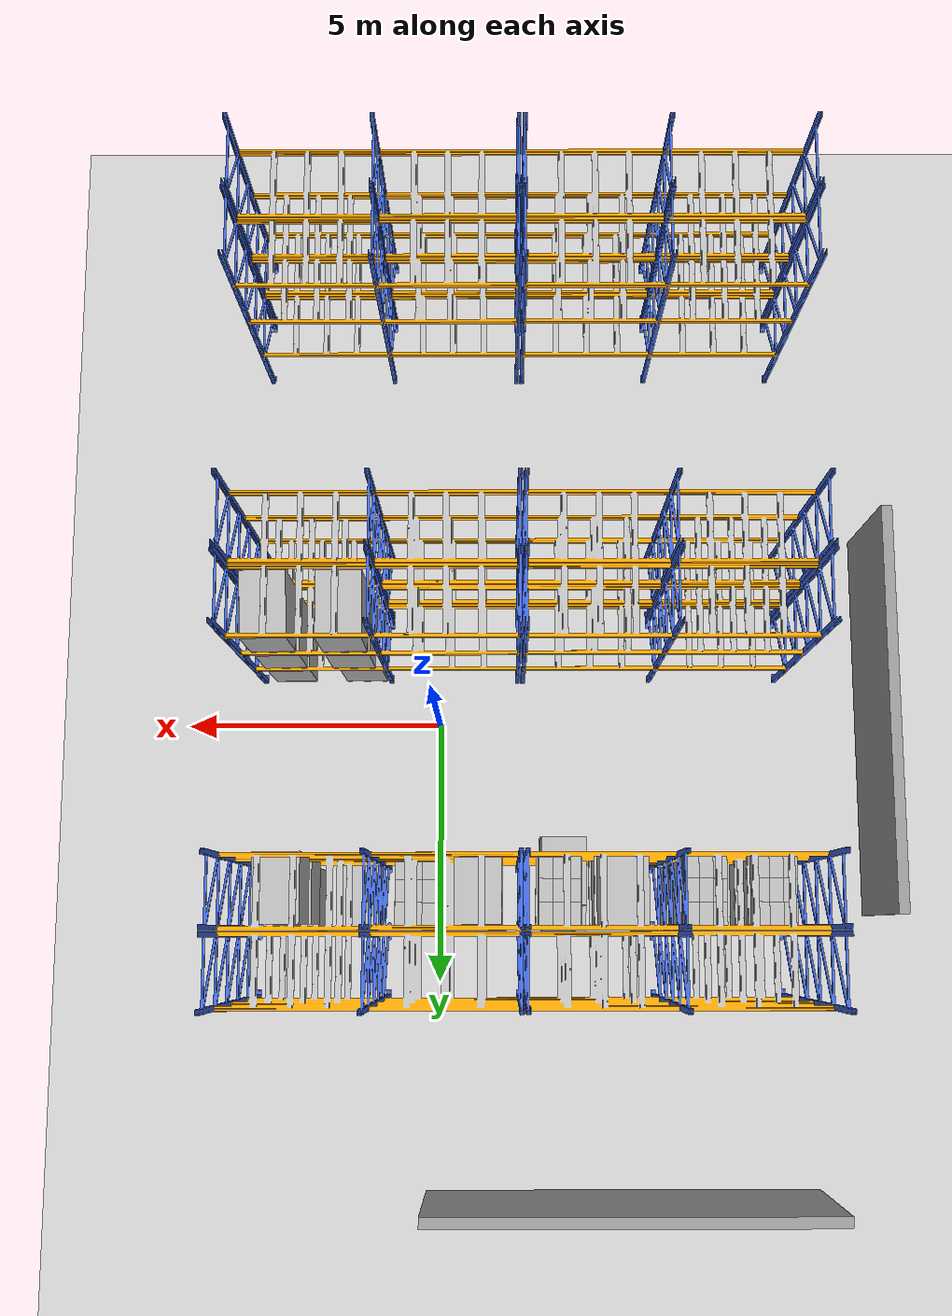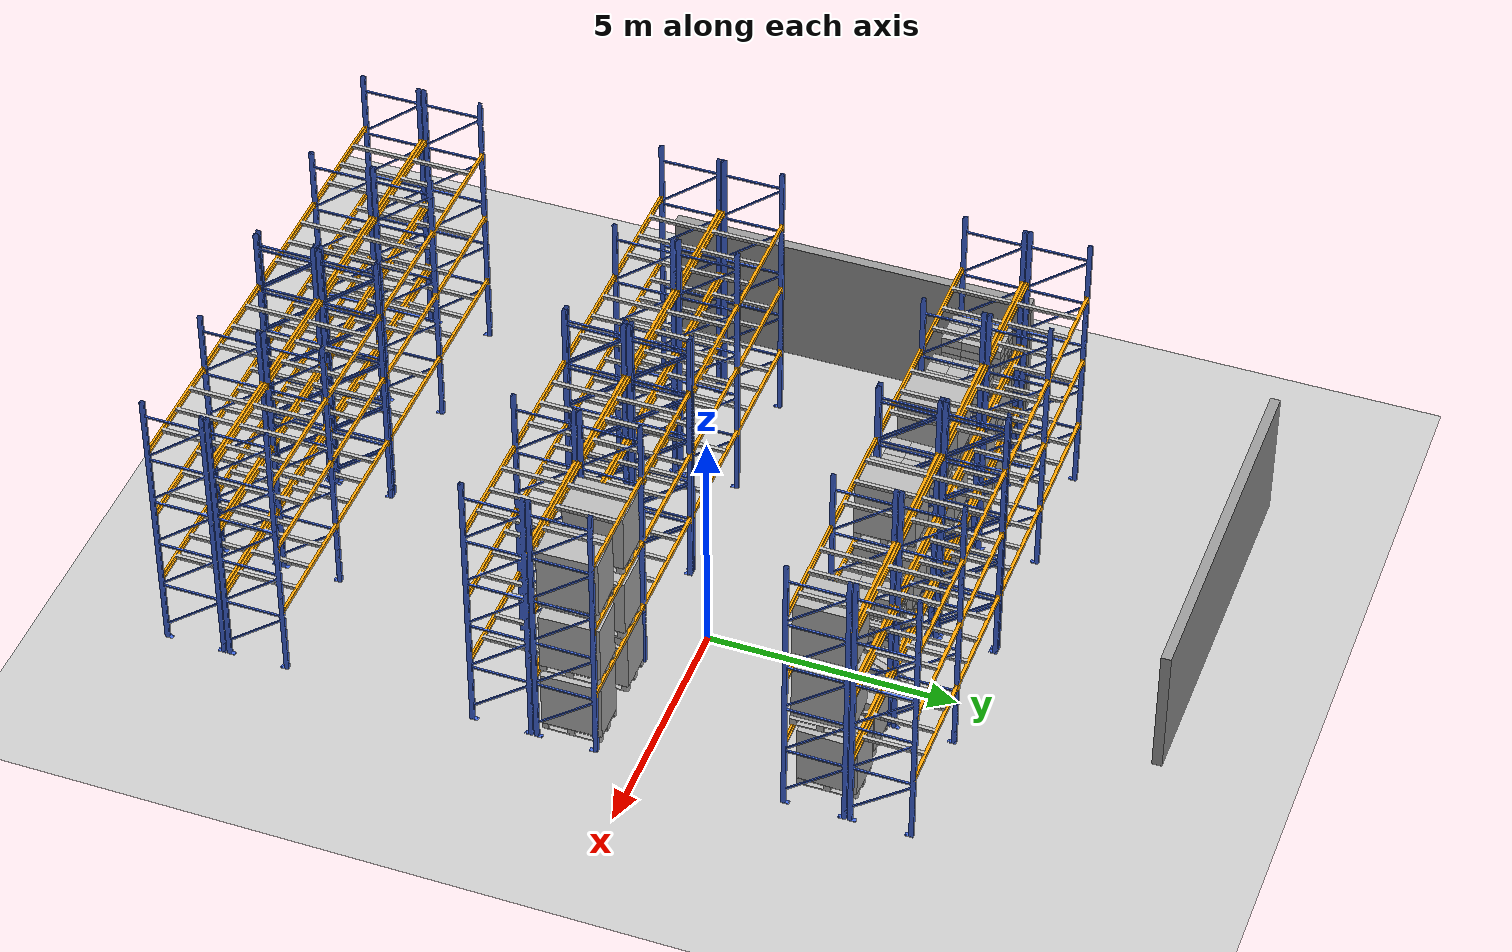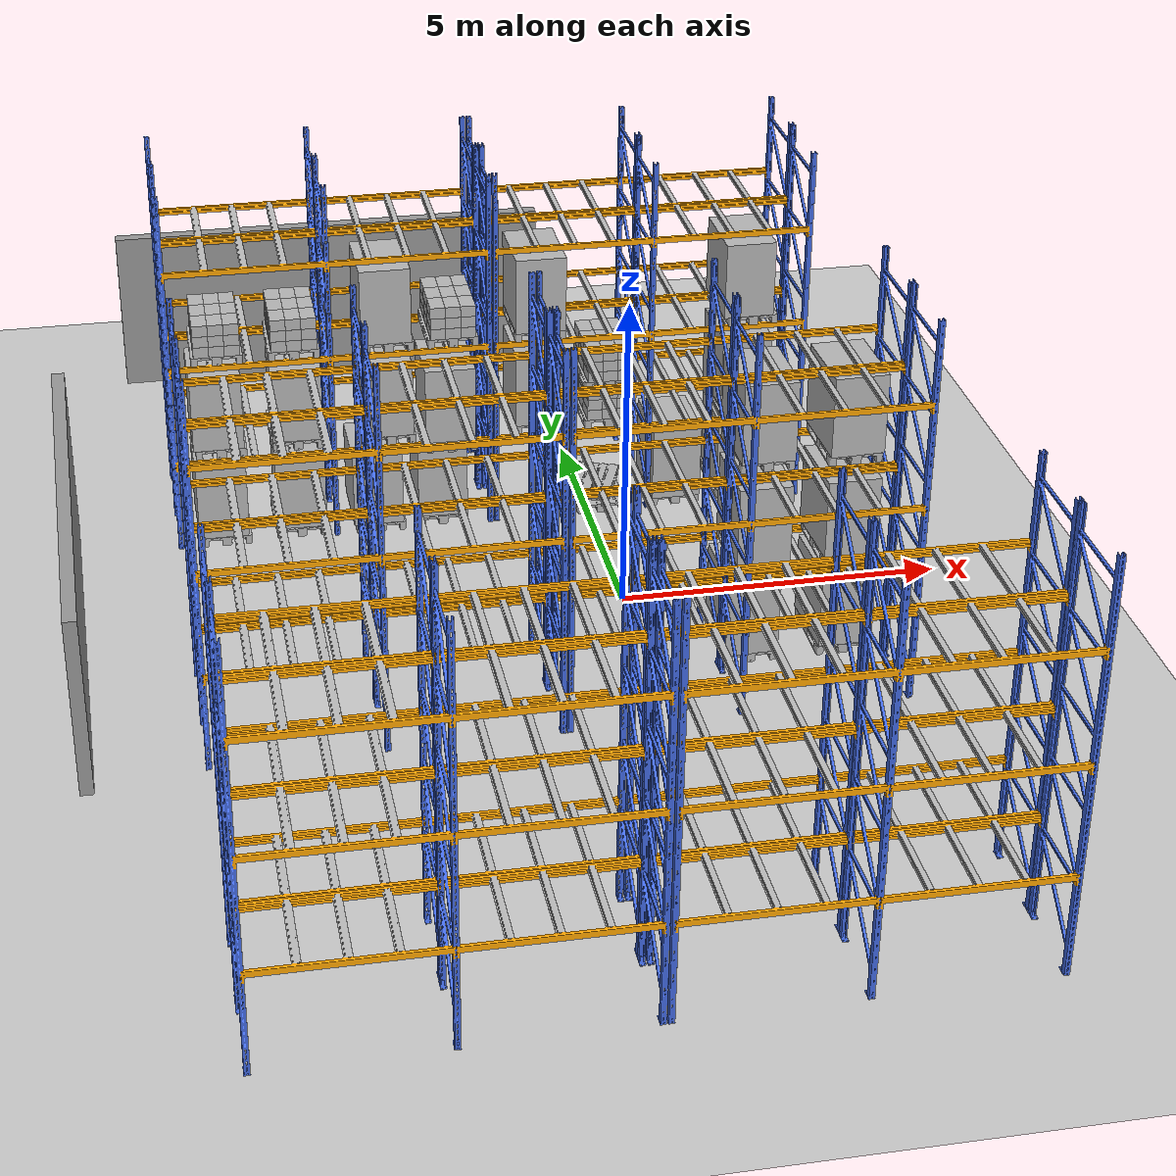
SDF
<sdf version="1.5">
 <world name="default">
  <include><uri>model://sun</uri></include>
  <include><uri>model://ground_plane</uri></include>
  <include><uri>model://asphalt_plane</uri></include>
  <physics name="default_physics" default="0" type="ode">
   <gravity>0 0 -9.8066</gravity>
   <ode>
    <solver>
     <type>quick</type>
     <iters>10</iters>
     <sor>1.3</sor>
     <use_dynamic_moi_rescaling>0</use_dynamic_moi_rescaling>
    </solver>
    <constraints>
     <cfm>0</cfm>
     <erp>0.2</erp>
     <contact_max_correcting_vel>100</contact_max_correcting_vel>
     <contact_surface_layer>0.001</contact_surface_layer>
    </constraints>
   </ode>
   <max_step_size>0.002</max_step_size>
   <real_time_factor>1</real_time_factor>
   <real_time_update_rate>500</real_time_update_rate>
   <magnetic_field>6e-06 2.3e-05 -4.2e-05</magnetic_field>
  </physics>
  <include><name>shelves 1</name><uri>model://shelves_high2</uri><pose>1 3.4 0   0 0 0</pose></include>
  <include><name>shelves 2</name><uri>model://shelves_high2</uri><pose>-4.13394 3.4 0 0 -0 0</pose></include>
  <include><name>shelves 3</name><uri>model://shelves_high2</uri><pose>1 4.7 0   0 0 0</pose></include>
  <include><name>shelves 4</name><uri>model://shelves_high2</uri><pose>-4.13394 4.7 0 0 -0 0</pose></include>
  <include>
   <name>shelves 5</name>
   <uri>model://shelves_high2_no_collision</uri>
   <pose>1 -1.5 0   0 0 0</pose>
  </include>
  <include>
   <name>shelves 6</name>
   <uri>model://shelves_high2_no_collision</uri>
   <pose>-4.13394 -1.5 0 0 -0 0</pose>
  </include>
  <include>
   <name>shelves 7</name>
   <uri>model://shelves_high2_no_collision</uri>
   <pose>1 -2.8 0   0 0 0</pose>
  </include>
  <include>
   <name>shelves 8</name>
   <uri>model://shelves_high2_no_collision</uri>
   <pose>-4.13394 -2.8 0 0 -0 0</pose>
  </include>
  <include>
   <name>shelves 9</name>
   <uri>model://shelves_high2_no_collision</uri>
   <pose>1 -7.8 0   0 0 0</pose>
  </include>
  <include>
   <name>shelves 10</name>
   <uri>model://shelves_high2_no_collision</uri>
   <pose>-4.13394 -7.8 0 0 -0 0</pose>
  </include>
  <include>
   <name>shelves 11</name>
   <uri>model://shelves_high2_no_collision</uri>
   <pose>1 -9.1 0   0 0 0</pose>
  </include>
  <include>
   <name>shelves 12</name>
   <uri>model://shelves_high2_no_collision</uri>
   <pose>-4.13394 -9.1 0 0 -0 0</pose>
  </include>
  <include>
   <name>pallet 1 box</name>
   <uri>model://big_box3</uri>
   <pose>1.48626 3.390705 0.760253 0 0.000143 -1.57317</pose>
  </include>
  <include>
   <name>pallet 1 support</name>
   <uri>model://europallet</uri>
   <pose>1.48088 3.400944 0.0635 0 0 -1.56736</pose>
  </include>
  <include>
   <name>pallet 4 box</name>
   <uri>model://big_box3</uri>
   <pose>-2.37439 3.440964 0.776474 0 0 -1.59804</pose>
  </include>
  <include>
   <name>pallet 4 support</name>
   <uri>model://europallet</uri>
   <pose>-2.40127 3.415746 0.0635 0 0 -1.5558</pose>
  </include>
  <include>
   <name>pallet 7 box</name>
   <uri>model://big_box4</uri>
   <pose>2.61297 3.464591 0.774725 0 0 -1.59992</pose>
  </include>
  <include>
   <name>pallet 7 support</name>
   <uri>model://europallet</uri>
   <pose>2.59788 3.454115 0.0635 0 0 -1.56921</pose>
  </include>
  <include>
   <name>pallet 10 box</name>
   <uri>model://big_box3</uri>
   <pose>-3.45548 3.349857 0.774725 0 0 -1.56894</pose>
  </include>
  <include>
   <name>pallet 10 support</name>
   <uri>model://europallet</uri>
   <pose>-3.41303 3.343739 0.0635 0 -0 1.56536</pose>
  </include>
  <include>
   <name>pallet 11 box</name>
   <uri>model://big_box4</uri>
   <pose>-4.67439 3.440964 0.776474 0 0 -1.59804</pose>
  </include>
  <include>
   <name>pallet 11 support</name>
   <uri>model://europallet</uri>
   <pose>-4.70127 3.415746 0.0635 0 0 -1.5558</pose>
  </include>
  <include>
   <name>pallet 12 box</name>
   <uri>model://big_box3</uri>
   <pose>-5.95548 3.349857 0.774725 0 0 -1.56894</pose>
  </include>
  <include>
   <name>pallet 12 support</name>
   <uri>model://europallet</uri>
   <pose>-5.91303 3.343739 0.0635 0 -0 1.56536</pose>
  </include>
  <include>
   <name>pallet 18 support</name>
   <uri>model://europallet</uri>
   <pose>0.234986 3.337637 0.0635 0 -0 1.56536</pose>
  </include>
  <include>
   <name>pallet 18b support</name>
   <uri>model://europallet</uri>
   <pose>0.134986 3.337637 0.2102 0 -0 1.2</pose>
  </include>
  <include>
   <name>pallet 2 box</name>
   <uri>model://big_box3</uri>
   <pose>-3.25548 3.349857 2.3397 0 0 -1.56894</pose>
  </include>
  <include>
   <name>pallet 2 support</name>
   <uri>model://europallet</uri>
   <pose>-3.21303 3.343739 1.6373 0 -0 1.56536</pose>
  </include>
  <include>
   <name>pallet 5 multi boxes</name>
   <uri>model://pallet_full</uri>
   <pose>0.334986 3.337637 1.63184 0 0 -1.57575</pose>
   <static>true</static>
  </include>
  <include>
   <name>pallet 17 multi boxes</name>
   <uri>model://pallet_full</uri>
   <pose>0.334986 3.337637 2.31 0 0 -1.57575</pose>
   <static>true</static>
  </include>
  <include>
   <name>pallet 8 box</name>
   <uri>model://big_box4</uri>
   <pose>2.56918 3.321158 2.35696 0 0 -1.56652</pose>
  </include>
  <include>
   <name>pallet 8 support</name>
   <uri>model://europallet</uri>
   <pose>2.64128 3.308661 1.64676 0 0 -1.55378</pose>
  </include>
  <include>
   <name>pallet 9 box</name>
   <uri>model://big_box4</uri>
   <pose>-2.30257 2.987644 2.35696 0 0 -1.57937</pose>
  </include>
  <include>
   <name>pallet 9 support</name>
   <uri>model://europallet</uri>
   <pose>-2.28744 2.915349 1.64676 0 -0 1.5541</pose>
  </include>
  <include>
   <name>pallet 13 box</name>
   <uri>model://big_box3</uri>
   <pose>-4.67439 3.440964 2.35696 0 0 -1.59804</pose>
  </include>
  <include>
   <name>pallet 13 support</name>
   <uri>model://europallet</uri>
   <pose>-4.70127 3.415746 1.64676 0 0 -1.5558</pose>
  </include>
  <include>
   <name>pallet 14 box</name>
   <uri>model://big_box4</uri>
   <pose>-5.95548 3.349857 2.35696 0 0 -1.56894</pose>
  </include>
  <include>
   <name>pallet 14 support</name>
   <uri>model://europallet</uri>
   <pose>-5.91303 3.343739 1.64676 0 -0 1.56536</pose>
  </include>
  <include>
   <name>pallet 19 box</name>
   <uri>model://big_box3</uri>
   <pose>-0.8 3.337637 2.3397 0 0 -1.56894</pose>
  </include>
  <include>
   <name>pallet 19 support</name>
   <uri>model://europallet</uri>
   <pose>-0.8 3.337637 1.6373 0 -0 1.56536</pose>
  </include>
  <include>
   <name>pallet 6 multi boxes</name>
   <uri>model://pallet_full</uri>
   <pose>-2.18966 3.351916 3.27046 0 0 -1.58092</pose>
   <static>true</static>
  </include>
  <include>
   <name>pallet 15 multi boxes</name>
   <uri>model://pallet_full</uri>
   <pose>-4.68966 3.351916 3.27046 0 0 -1.58092</pose>
   <static>true</static>
  </include>
  <include>
   <name>pallet 16 multi boxes</name>
   <uri>model://pallet_full</uri>
   <pose>-5.88966 3.351916 3.27046 0 0 -1.58092</pose>
   <static>true</static>
  </include>
  <include>
   <name>pallet 20 box</name>
   <uri>model://big_box4</uri>
   <pose>-3.25548 3.349857 3.97286 0 0 -1.56894</pose>
  </include>
  <include>
   <name>pallet 20 support</name>
   <uri>model://europallet</uri>
   <pose>-3.21303 3.343739 3.27046 0 -0 1.56536</pose>
  </include>
  <include>
   <name>pallet 21 box</name>
   <uri>model://big_box3</uri>
   <pose>2.56918 3.321158 3.97286 0 0 -1.56652</pose>
  </include>
  <include>
   <name>pallet 21 support</name>
   <uri>model://europallet</uri>
   <pose>2.64128 3.308661 3.27046 0 0 -1.55378</pose>
  </include>
  <include>
   <name>pallet 22 box</name>
   <uri>model://big_box4</uri>
   <pose>-0.8 3.337637 3.97286 0 0 -1.56894</pose>
  </include>
  <include>
   <name>pallet 22 support</name>
   <uri>model://europallet</uri>
   <pose>-0.8 3.337637 3.27046 0 -0 1.56536</pose>
  </include>
  <include>
   <name>pallet B-0-1 box</name>
   <uri>model://big_box3</uri>
   <pose>1.48626 -1.5 0.760253 0 0.000143 1.57317</pose>
  </include>
  <include>
   <name>pallet B-0-1 support</name>
   <uri>model://europallet</uri>
   <pose>1.48088 -1.5 0.0635 0 0 1.56736</pose>
  </include>
  <include>
   <name>pallet B-0-2 box</name>
   <uri>model://big_box4</uri>
   <pose>2.9 -1.5 0.774725 0 0 1.59992</pose>
  </include>
  <include>
   <name>pallet B-0-2 support</name>
   <uri>model://europallet</uri>
   <pose>2.9 -1.5 0.0635 0 0 1.56921</pose>
  </include>
  <include>
   <name>pallet B-1-1 box</name>
   <uri>model://big_box3</uri>
   <pose>1.6 -1.5 2.30 0 0.000143 1.57317</pose>
   <static>true</static>
  </include>
  <include>
   <name>pallet B-1-1-1 support</name>
   <uri>model://europallet</uri>
   <pose>1.6 -1.5 1.60 0 0 1.56736</pose>
   <static>true</static>
  </include>
  <include>
   <name>pallet B-1-2 box</name>
   <uri>model://big_box3</uri>
   <pose>2.9 -1.5 2.30 0 0 1.59992</pose>
   <static>true</static>
  </include>
  <include>
   <name>pallet B-1-2 support</name>
   <uri>model://europallet</uri>
   <pose>2.9 -1.5 1.60 0 0 1.56921</pose>
   <static>true</static>
  </include>
  <include>
   <name>pallet B-2-1 box</name>
   <uri>model://big_box4</uri>
   <pose>1.6 -1.5 3.97 0 0.000143 1.57317</pose>
   <static>true</static>
  </include>
  <include>
   <name>pallet B-1-1-1 support</name>
   <uri>model://europallet</uri>
   <pose>1.6 -1.5 3.27 0 0 1.56736</pose>
   <static>true</static>
  </include>
  <include>
   <name>pallet B-2-2 box</name>
   <uri>model://big_box3</uri>
   <pose>2.9 -1.5 3.97 0 0 1.59992</pose>
   <static>true</static>
  </include>
  <include>
   <name>pallet B-1-2 support</name>
   <uri>model://europallet</uri>
   <pose>2.9 -1.5 3.27 0 0 1.56921</pose>
   <static>true</static>
  </include>
  <include><name>grey_wall</name><uri>model://grey_wall</uri><pose>-8.34545 0 0 0 0 -1.57</pose></include>
  <include><name>grey_wall2</name><uri>model://grey_wall</uri><pose>-3.5 9 0 0 0 0</pose></include>
 </world>
</sdf>

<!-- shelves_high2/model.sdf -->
<sdf version="1.5">
  <model name="Shelves high 2">
    <static>true</static>
    <link name="link">
      <collision name="collision">
        <geometry>
          <mesh>
            <uri>model://../model_source/models/shelves_high2/meshes/shelves_high2_collision.dae</uri>
            <scale>1 1.2 1.2</scale>
          </mesh>
        </geometry>
      </collision>
      <visual name="visual">
        <geometry>
          <mesh>
            <uri>model://../model_source/models/shelves_high2/meshes/shelves_high2.dae</uri>
            <scale>1 1.2 1.2</scale>
          </mesh>
        </geometry>
      </visual>
    </link>
  </model>
</sdf>

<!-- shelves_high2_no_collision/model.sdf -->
<sdf version="1.5">
  <model name="Shelves high 2 - no collision">
    <static>true</static>
    <link name="link">
      <visual name="visual">
        <geometry>
          <mesh>
            <uri>model://shelves_high2_no_collision/meshes/shelves_high2.dae</uri>
            <scale>1 1.2 1.2</scale>
          </mesh>
        </geometry>
      </visual>
    </link>
  </model>
</sdf>

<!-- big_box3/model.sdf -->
<sdf version="1.5">
  <model name="big_box3">
    <pose>0 0 0.625  0 0 0</pose>
    <static>false</static>
    <link name="link">
      <inertial>
        <mass>40.0</mass>
        <inertia>
          <ixx>1</ixx>
          <ixy>0</ixy>
          <ixz>0</ixz>
          <iyy>1</iyy>
          <iyz>0</iyz>
          <izz>1</izz>
        </inertia>
      </inertial>

      <collision name="collision">
        <geometry>
          <box>
              <size>1.20 0.80 1.25</size>
          </box>
        </geometry>
	<surface>
          <contact>
            <ode>
              <max_vel>0.1</max_vel>
              <min_depth>0.001</min_depth>
            </ode>
          </contact>
        </surface>
      </collision>
      <visual name="visual">
        <geometry>
          <mesh>
            <uri>model://big_box3/meshes/big_box.dae</uri>
          </mesh>
	</geometry>
      </visual>
    </link>
  </model>
</sdf>

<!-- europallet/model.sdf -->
<sdf version="1.5">
  <model name="EuroPallet">
    <!-- Rises the pallet above the ground -->
    <pose>0 0 0.0635  0 0 0</pose>

    <static>false</static>
    <link name="link">
      <inertial>
        <mass>25.0</mass>
        <inertia>
          <ixx>1</ixx>
          <ixy>0</ixy>
          <ixz>0</ixz>
          <iyy>1</iyy>
          <iyz>0</iyz>
          <izz>1</izz>
        </inertia>
      </inertial>

      <collision name="top">
	    <pose>0 0 0.0625  0 0 0</pose>
        <geometry>
		  <box>
		    <size>1.20 0.80 0.042</size>
	      </box>
        </geometry>

      </collision>

      <collision name="colum_1">
	    <pose>0.5275 -0.35 0  0 0 0</pose>
        <geometry>
		  <box>
		    <size>.145 0.10 0.085</size>
	      </box>
        </geometry>
      </collision>

      <collision name="colum_2">
	    <pose>0.5275 0 0  0 0 0</pose>
        <geometry>
		  <box>
		    <size>.145 0.145 0.085</size>
	      </box>
        </geometry>
      </collision>

      <collision name="colum_3">
	    <pose>0.5275 0.35 0  0 0 0</pose>
        <geometry>
		  <box>
		    <size>.145 0.10 0.085</size>
	      </box>
        </geometry>
      </collision>

      <collision name="colum_4">
	    <pose>0 -0.35 0  0 0 0</pose>
        <geometry>
		  <box>
		    <size>.145 0.10 0.085</size>
	      </box>
        </geometry>
      </collision>

      <collision name="colum_5">
	    <pose>0 0 0  0 0 0</pose>
        <geometry>
		  <box>
		    <size>.145 0.145 0.085</size>
	      </box>
        </geometry>
      </collision>

      <collision name="colum_6">
	    <pose>0 0.35 0  0 0 0</pose>
        <geometry>
		  <box>
		    <size>.145 0.10 0.085</size>
	      </box>
        </geometry>
      </collision>

      <collision name="colum_7">
	    <pose>-0.5275 -0.35 0  0 0 0</pose>
        <geometry>
		  <box>
		    <size>.145 0.10 0.085</size>
	      </box>
        </geometry>
      </collision>

      <collision name="colum_8">
	    <pose>-0.5275 0 0  0 0 0</pose>
        <geometry>
		  <box>
		    <size>.145 0.145 0.085</size>
	      </box>
        </geometry>
      </collision>

      <collision name="colum_9">
	    <pose>-0.5275 0.35 0  0 0 0</pose>
        <geometry>
		  <box>
		    <size>.145 0.10 0.085</size>
	      </box>
        </geometry>
      </collision>

      <collision name="bottom_1">
	    <pose>0 -0.35 -0.053  0 0 0</pose>
        <geometry>
		  <box>
		    <size>1.20 0.10 0.021</size>
	      </box>
        </geometry>
      </collision>

      <collision name="bottom_2">
	    <pose>0 0 -0.053  0 0 0</pose>
        <geometry>
		  <box>
		    <size>1.20 0.145 0.021</size>
	      </box>
        </geometry>
      </collision>

      <collision name="bottom_3">
	    <pose>0 0.35 -0.053  0 0 0</pose>
        <geometry>
		  <box>
		    <size>1.20 0.10 0.021</size>
	      </box>
        </geometry>
      </collision>

      <visual name="visual">
        <geometry>
          <mesh>
            <uri>model://europallet/meshes/europallet.dae</uri>
          </mesh>
        </geometry>
      </visual>
    </link>
  </model>
</sdf>

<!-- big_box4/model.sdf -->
<sdf version="1.5">
  <model name="Big box 4">
    <pose>0 0 0.625  0 0 0</pose>
    <static>false</static>
    <link name="link">
      <inertial>
        <mass>40.0</mass>
        <inertia>
          <ixx>1</ixx>
          <ixy>0</ixy>
          <ixz>0</ixz>
          <iyy>1</iyy>
          <iyz>0</iyz>
          <izz>1</izz>
        </inertia>
      </inertial>

      <collision name="collision">
        <geometry>
          <box>
              <size>1.20 0.80 1.25</size>
          </box>
        </geometry>
	<surface>
          <contact>
            <ode>
              <max_vel>0.1</max_vel>
              <min_depth>0.001</min_depth>
            </ode>
          </contact>
        </surface>
      </collision>
      <visual name="visual">
        <geometry>
          <mesh>
            <uri>model://big_box4/meshes/big_box.dae</uri>
          </mesh>
	</geometry>
      </visual>
    </link>
  </model>
</sdf>

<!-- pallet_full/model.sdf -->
<sdf version="1.5">
  <model name="pallet full">
    <pose>0 0 1  0 0 0</pose>
    <static>false</static>
    <self_collide>true</self_collide>
    <allow_auto_disable>true</allow_auto_disable>

    <!-- Pallet dimensions: 120 x 80 x 14.7 cm-->
    <include>
      <uri>model://europallet</uri>
      <name>pallet</name>
      <pose>0 0 0  0 0 0</pose>
    </include>

	<!-- Small Box dimensions: 40 x 24 x 18 cm-->

	<!-- First level of boxes -->
    <include>
      <uri>model://small_box</uri>
      <name>small_box_1_lvl_1</name>
      <pose>0.40 -0.24 0.172  0 0 0</pose>
      <static>true</static>
    </include>

	<include>
      <uri>model://small_box</uri>
      <name>small_box_2_lvl_1</name>
      <pose>0.40 0 0.172  0 0 0</pose>
      <static>true</static>
    </include>

	<include>
      <uri>model://small_box</uri>
      <name>small_box_3_lvl_1</name>
      <pose>0.40 0.24 0.172  0 0 0</pose>
    </include>

	<include>
      <uri>model://small_box</uri>
      <name>small_box_4_lvl_1</name>
      <pose>0 -0.24 0.172  0 0 0</pose>
    </include>

	<include>
      <uri>model://small_box</uri>
      <name>small_box_5_lvl_1</name>
      <pose>0 0 0.172  0 0 0</pose>
    </include>

	<include>
      <uri>model://small_box</uri>
      <name>small_box_6_lvl_1</name>
      <pose>0 0.24 0.172  0 0 0</pose>
    </include>

	<include>
      <uri>model://small_box</uri>
      <name>small_box_7_lvl_1</name>
      <pose>-0.40 -0.24 0.172  0 0 0</pose>
    </include>

	<include>
      <uri>model://small_box</uri>
      <name>small_box_8_lvl_1</name>
      <pose>-0.40 0 0.172  0 0 0</pose>
    </include>

	<include>
      <uri>model://small_box</uri>
      <name>small_box_9_lvl_1</name>
      <pose>-0.40 0.24 0.172  0 0 0</pose>
    </include>

	<!-- Second level of boxes -->
    <include>
      <uri>model://small_box</uri>
      <name>small_box_1_lvl_2</name>
      <pose>0.40 -0.24 0.353  0 0 0</pose>
    </include>

	<include>
      <uri>model://small_box</uri>
      <name>small_box_2_lvl_2</name>
      <pose>0.40 0 0.353  0 0 0</pose>
    </include>

	<include>
      <uri>model://small_box</uri>
      <name>small_box_3_lvl_2</name>
      <pose>0.40 0.24 0.353  0 0 0</pose>
    </include>

	<include>
      <uri>model://small_box</uri>
      <name>small_box_4_lvl_2</name>
      <pose>0 -0.24 0.353  0 0 0</pose>
    </include>

	<include>
      <uri>model://small_box</uri>
      <name>small_box_5_lvl_2</name>
      <pose>0 0 0.353  0 0 0</pose>
    </include>

	<include>
      <uri>model://small_box</uri>
      <name>small_box_6_lvl_2</name>
      <pose>0 0.24 0.353  0 0 0</pose>
    </include>

	<include>
      <uri>model://small_box</uri>
      <name>small_box_7_lvl_2</name>
      <pose>-0.40 -0.24 0.353  0 0 0</pose>
    </include>

	<include>
      <uri>model://small_box</uri>
      <name>small_box_8_lvl_2</name>
      <pose>-0.40 0 0.353  0 0 0</pose>
    </include>

	<include>
      <uri>model://small_box</uri>
      <name>small_box_9_lvl_2</name>
      <pose>-0.40 0.24 0.353  0 0 0</pose>
    </include>

	<!-- Third level of boxes -->
    <include>
      <uri>model://small_box</uri>
      <name>small_box_1_lvl_3</name>
      <pose>0.40 -0.24 0.534  0 0 0</pose>
    </include>

	<include>
      <uri>model://small_box</uri>
      <name>small_box_2_lvl_3</name>
      <pose>0.40 0 0.534  0 0 0</pose>
    </include>

	<include>
      <uri>model://small_box</uri>
      <name>small_box_3_lvl_3</name>
      <pose>0.40 0.24 0.534  0 0 0</pose>
    </include>

	<include>
      <uri>model://small_box</uri>
      <name>small_box_4_lvl_3</name>
      <pose>0 -0.24 0.534  0 0 0</pose>
    </include>

	<include>
      <uri>model://small_box</uri>
      <name>small_box_5_lvl_3</name>
      <pose>0 0 0.534  0 0 0</pose>
    </include>

	<include>
      <uri>model://small_box</uri>
      <name>small_box_6_lvl_3</name>
      <pose>0 0.24 0.534  0 0 0</pose>
    </include>

	<include>
      <uri>model://small_box</uri>
      <name>small_box_7_lvl_3</name>
      <pose>-0.40 -0.24 0.534  0 0 0</pose>
    </include>

	<include>
      <uri>model://small_box</uri>
      <name>small_box_8_lvl_3</name>
      <pose>-0.40 0 0.534  0 0 0</pose>
    </include>

	<include>
      <uri>model://small_box</uri>
      <name>small_box_9_lvl_3</name>
      <pose>-0.40 0.24 0.534  0 0 0</pose>
      <static>true</static>
    </include>

  </model>
</sdf>

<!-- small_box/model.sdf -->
<sdf version="1.5">
  <model name="small box">
    <pose>0 0 0.09  0 0 0</pose>
    <static>false</static>
    <link name="link">
      <inertial>
        <mass>2.0</mass>
        <inertia>
          <ixx>0.0008611666666666669</ixx>
          <ixy>0</ixy>
          <ixz>0</ixz>
          <iyy>0.0008611666666666669</iyy>
          <iyz>0</iyz>
          <izz>0.0008611666666666669</izz>
        </inertia>
      </inertial>

      <collision name="collision">
        <geometry>
          <box>
              <size>0.40 0.23 0.18</size>
          </box>
        </geometry>
	<surface>
          <contact>
            <ode>
              <max_vel>0.1</max_vel>
              <min_depth>0.001</min_depth>
            </ode>
          </contact>
        </surface>
      </collision>
      <visual name="visual">
        <geometry>
          <mesh>
            <uri>model://small_box/meshes/small_box.dae</uri>
          </mesh>
	</geometry>
      </visual>
    </link>
  </model>
</sdf>

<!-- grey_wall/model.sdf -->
<sdf version="1.5">
  <model name="grey_wall">
    <static>true</static>
    <link name="link">
      <pose>0 0 1.4 0 0 0</pose>
      <collision name="collision">
        <geometry>
          <box>
            <size>7.5 0.2 2.8</size>
          </box>
        </geometry>
      </collision>
      <visual name="visual">
        <cast_shadows>false</cast_shadows>
        <geometry>
          <box>
            <size>7.5 0.2 2.8</size>
          </box>
        </geometry>
        <material>
          <script>
            <uri>model://../model_source/models/grey_wall/materials/scripts</uri>
            <uri>model://../model_source/models/grey_wall/materials/textures</uri>
            <name>vrc/grey_wall</name>
          </script>
        </material>
      </visual>
    </link>
  </model>
</sdf>
